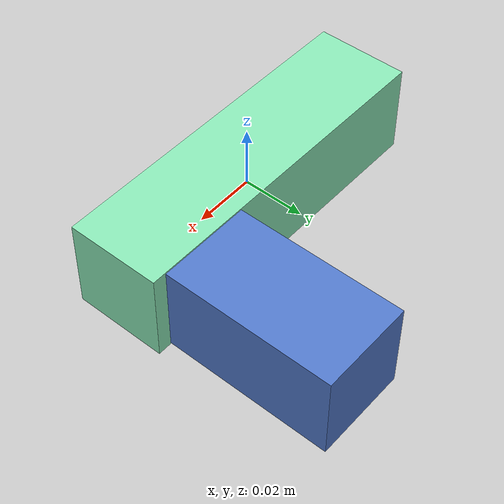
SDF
<sdf version="1.4"><world name="default"><model name="object0"><link name="link1"><pose>0 0 0 0 0 0</pose><inertial><pose>0 0 0 0 0 0</pose><mass>0.05886145562467712</mass><inertia><ixx>8.829218343701568e-06</ixx><ixy>0</ixy><iyy>6.269523784797201e-05</iyy><ixz>0</ixz><iyz>0</iyz><izz>6.269523784797201e-05</izz></inertia></inertial><visual name="link1_visual"><pose>0 0  0 0 0 0</pose><geometry><box><size>0.10900269560125395 0.03 0.03</size></box></geometry><material><diffuse>0.5345090063969269 0.8999965133709076 0.7078452590425657 1</diffuse></material></visual><collision><pose>0 0  0 0 0 0</pose><geometry><box><size>0.10900269560125395 0.03 0.03</size></box></geometry></collision></link><link name="link2"><pose>0.034956309448398906 0.03290294271621779 0 0 0 0</pose><inertial><pose>0 0 0 0 0 0</pose><mass>0.03882625037866801</mass><inertia><ixx>1.9447669794474897e-05</ixx><ixy>0</ixy><iyy>5.633041825771751e-06</iyy><ixz>0</ixz><iyz>0</iyz><izz>1.9638565525503346e-05</izz></inertia></inertial><visual name="link2_visual"><pose>0 0  0 0 0 0</pose><geometry><box><size>0.03 0.07190046366420004 0.028999999999999998</size></box></geometry><material><diffuse>0.3189864642166352 0.47528190332134634 0.7920806989881475 1</diffuse></material></visual><collision><pose>0 0  0 0 0 0</pose><geometry><box><size>0.03 0.07190046366420004 0.028999999999999998</size></box></geometry></collision></link><joint name="link_joint_0" type="fixed"><parent>link1</parent><child>link2</child><pose>0 0 0 0 0 0</pose><axis><xyz>0 0 1</xyz></axis></joint></model></world></sdf>
